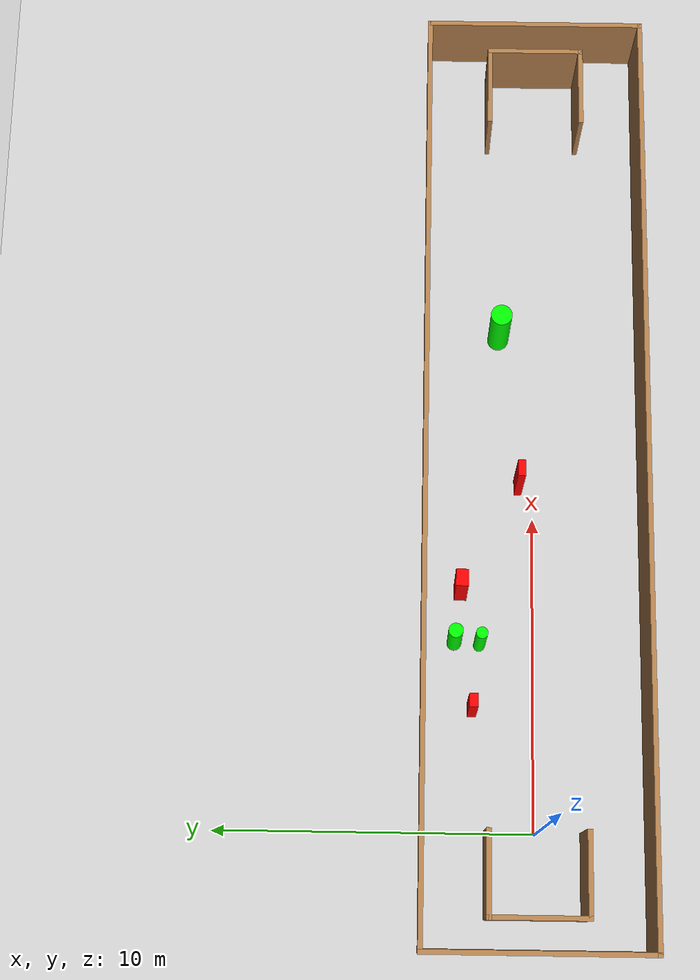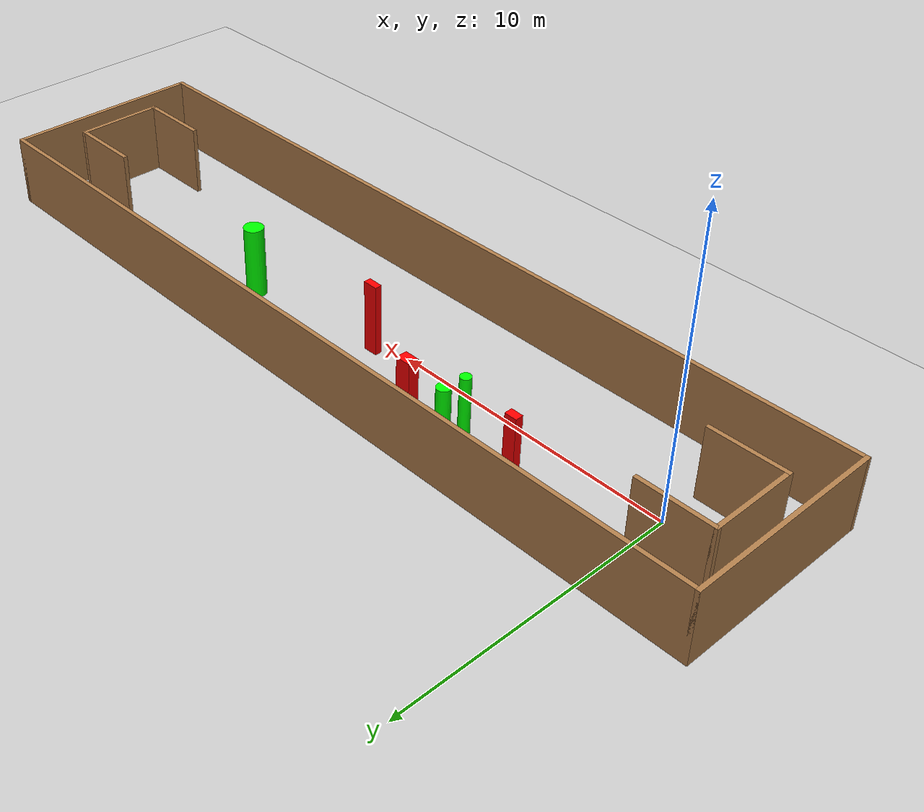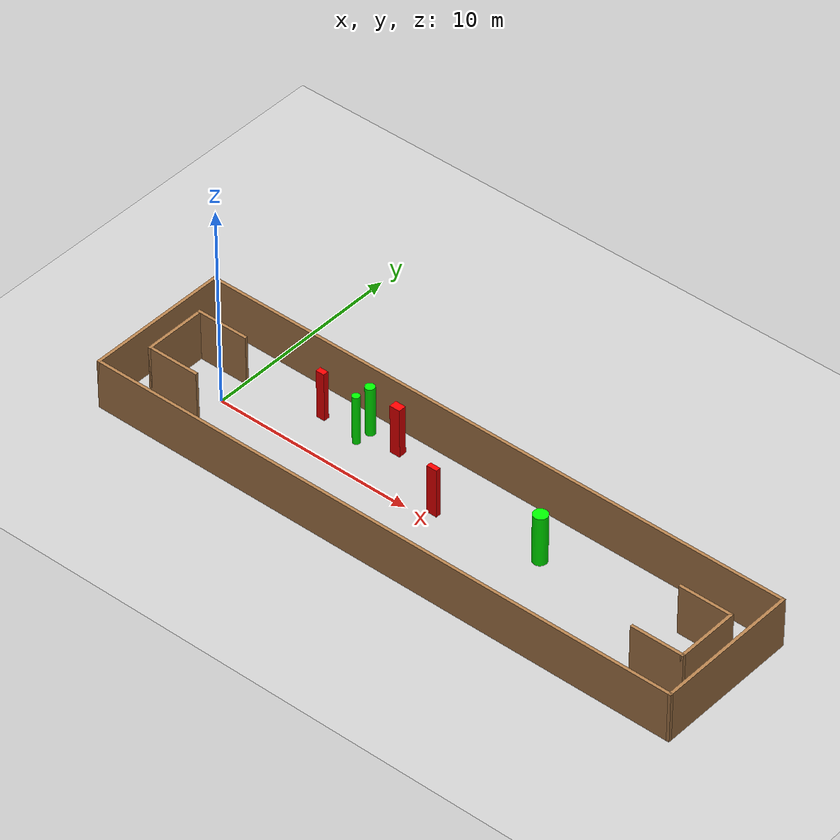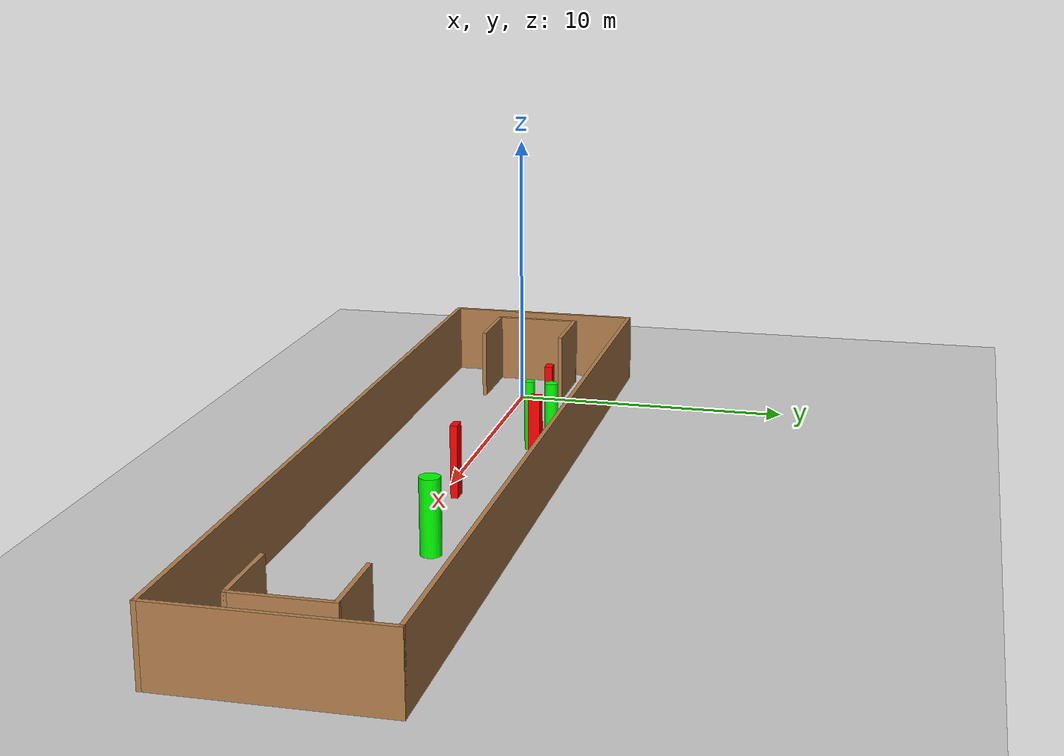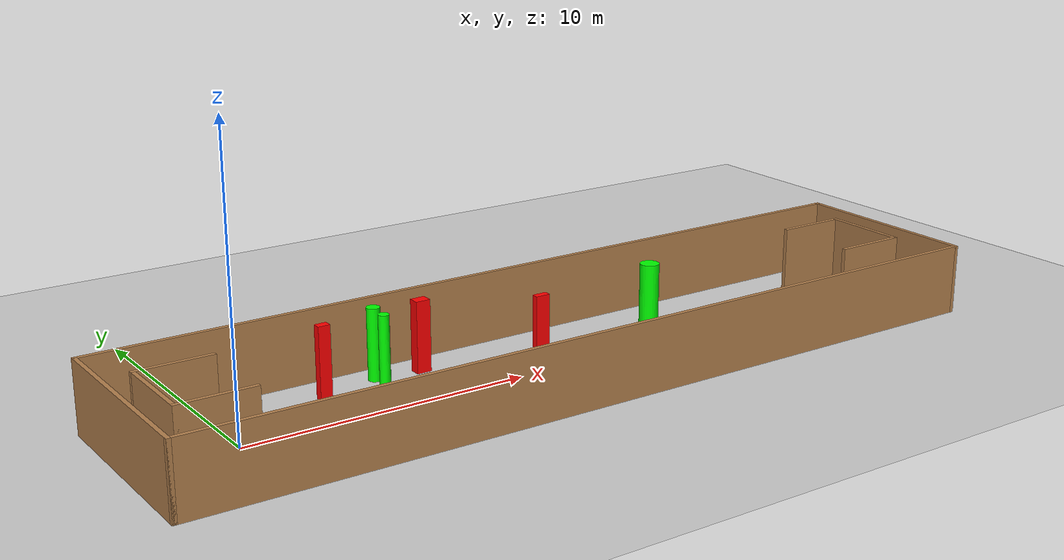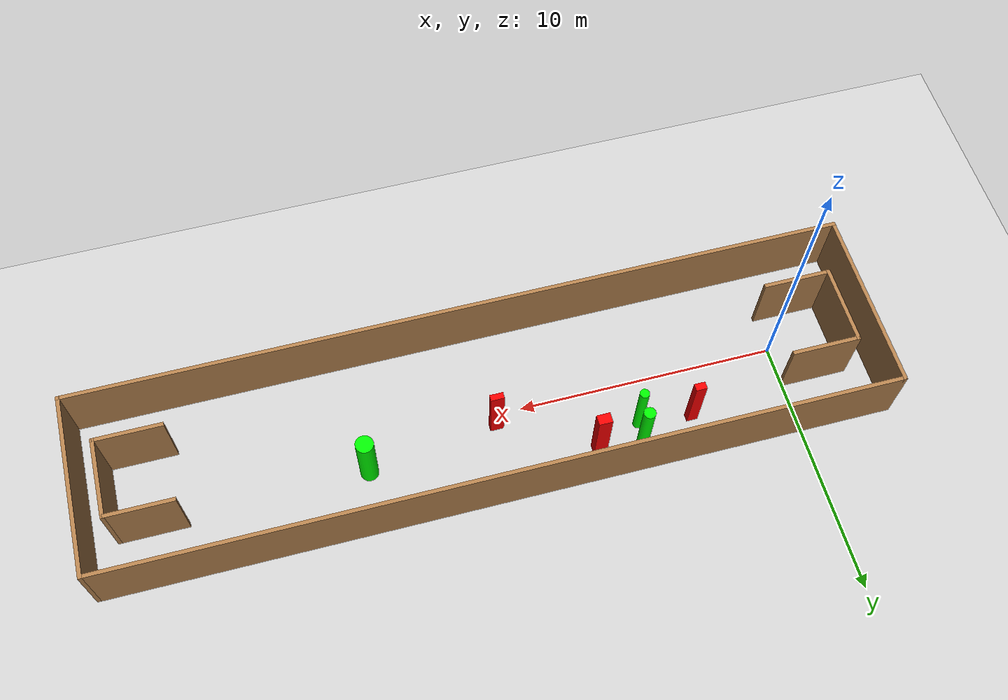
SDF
<sdf version="1.7">
 <world name="default">
  <light name="sun" type="directional">
   <pose>0 0 10 0 -0 0</pose>
   <diffuse>0.8 0.8 0.8 1</diffuse>
   <specular>0.2 0.2 0.2 1</specular>
   <attenuation>
    <range>1000</range>
    <constant>0.9</constant>
    <linear>0.01</linear>
    <quadratic>0.001</quadratic>
   </attenuation>
   <direction>-0.5 0.1 -0.9</direction>
   <spot><inner_angle>0</inner_angle><outer_angle>0</outer_angle><falloff>0</falloff></spot>
  </light>
  <model name="ground_plane">
   <static>1</static>
   <link name="link">
    <collision name="collision">
     <geometry><plane><normal>0 0 1</normal><size>100 100</size></plane></geometry>
     <surface>
      <contact><collide_bitmask>65535</collide_bitmask></contact>
      <friction><ode><mu>100</mu><mu2>50</mu2></ode></friction>
     </surface>
    </collision>
    <visual name="visual">
     <cast_shadows>0</cast_shadows>
     <geometry><plane><normal>0 0 1</normal><size>100 100</size></plane></geometry>
     <material>
      <script><uri>file://media/materials/scripts/gazebo.material</uri><name>Gazebo/Grey</name></script>
     </material>
    </visual>
   </link>
  </model>
  <gravity>0 0 -9.8</gravity>
  <magnetic_field>6e-06 2.3e-05 -4.2e-05</magnetic_field>
  <atmosphere type="adiabatic"/>
  <physics type="ode">
   <max_step_size>0.001</max_step_size>
   <real_time_factor>1</real_time_factor>
   <real_time_update_rate>1000</real_time_update_rate>
  </physics>
  <scene><ambient>0.4 0.4 0.4 1</ambient><background>0.7 0.7 0.7 1</background><shadows>1</shadows></scene>
  <spherical_coordinates>
   <surface_model>EARTH_WGS84</surface_model>
   <latitude_deg>0</latitude_deg>
   <longitude_deg>0</longitude_deg>
   <elevation>0</elevation>
   <heading_deg>0</heading_deg>
  </spherical_coordinates>
  <model name="my_base_walls">
   <link name="Wall_0">
    <collision name="Wall_0_Collision">
     <geometry><box><size>7.15 0.15 2.5</size></box></geometry>
     <pose>0 0 1.25 0 -0 0</pose>
    </collision>
    <visual name="Wall_0_Visual">
     <pose>0 0 1.25 0 -0 0</pose>
     <geometry><box><size>7.15 0.15 2.5</size></box></geometry>
     <material>
      <script><uri>file://media/materials/scripts/gazebo.material</uri><name>Gazebo/Wood</name></script>
      <ambient>1 1 1 1</ambient>
     </material>
     <meta><layer>0</layer></meta>
    </visual>
    <pose>-15 0 0 0 -0 1.5708</pose>
   </link>
   <link name="Wall_10">
    <collision name="Wall_10_Collision">
     <geometry><box><size>2.65 0.15 2.5</size></box></geometry>
     <pose>0 0 1.25 0 -0 0</pose>
    </collision>
    <visual name="Wall_10_Visual">
     <pose>0 0 1.25 0 -0 0</pose>
     <geometry><box><size>2.65 0.15 2.5</size></box></geometry>
     <material>
      <script><uri>file://media/materials/scripts/gazebo.material</uri><name>Gazebo/Wood</name></script>
      <ambient>1 1 1 1</ambient>
     </material>
     <meta><layer>0</layer></meta>
    </visual>
    <pose>-12.75 -1.5 0 0 -0 0</pose>
   </link>
   <link name="Wall_12">
    <collision name="Wall_12_Collision">
     <geometry><box><size>2.65 0.15 2.5</size></box></geometry>
     <pose>0 0 1.25 0 -0 0</pose>
    </collision>
    <visual name="Wall_12_Visual">
     <pose>0 0 1.25 0 -0 0</pose>
     <geometry><box><size>2.65 0.15 2.5</size></box></geometry>
     <material>
      <script><uri>file://media/materials/scripts/gazebo.material</uri><name>Gazebo/Wood</name></script>
      <ambient>1 1 1 1</ambient>
     </material>
     <meta><layer>0</layer></meta>
    </visual>
    <pose>-12.75 1.5 0 0 -0 0</pose>
   </link>
   <link name="Wall_14">
    <collision name="Wall_14_Collision">
     <geometry><box><size>3.15 0.15 2.5</size></box></geometry>
     <pose>0 0 1.25 0 -0 0</pose>
    </collision>
    <visual name="Wall_14_Visual">
     <pose>0 0 1.25 0 -0 0</pose>
     <geometry><box><size>3.15 0.15 2.5</size></box></geometry>
     <material>
      <script><uri>file://media/materials/scripts/gazebo.material</uri><name>Gazebo/Wood</name></script>
      <ambient>1 1 1 1</ambient>
     </material>
     <meta><layer>0</layer></meta>
    </visual>
    <pose>14 0 0 0 -0 -1.5708</pose>
   </link>
   <link name="Wall_15">
    <collision name="Wall_15_Collision">
     <geometry><box><size>2.65 0.15 2.5</size></box></geometry>
     <pose>0 0 1.25 0 -0 0</pose>
    </collision>
    <visual name="Wall_15_Visual">
     <pose>0 0 1.25 0 -0 0</pose>
     <geometry><box><size>2.65 0.15 2.5</size></box></geometry>
     <material>
      <script><uri>file://media/materials/scripts/gazebo.material</uri><name>Gazebo/Wood</name></script>
      <ambient>1 1 1 1</ambient>
     </material>
     <meta><layer>0</layer></meta>
    </visual>
    <pose>12.75 -1.5 0 0 -0 3.14159</pose>
   </link>
   <link name="Wall_17">
    <collision name="Wall_17_Collision">
     <geometry><box><size>2.65 0.15 2.5</size></box></geometry>
     <pose>0 0 1.25 0 -0 0</pose>
    </collision>
    <visual name="Wall_17_Visual">
     <pose>0 0 1.25 0 -0 0</pose>
     <geometry><box><size>2.65 0.15 2.5</size></box></geometry>
     <material>
      <script><uri>file://media/materials/scripts/gazebo.material</uri><name>Gazebo/Wood</name></script>
      <ambient>1 1 1 1</ambient>
     </material>
     <meta><layer>0</layer></meta>
    </visual>
    <pose>12.75 1.5 0 0 -0 3.14159</pose>
   </link>
   <link name="Wall_2">
    <collision name="Wall_2_Collision">
     <geometry><box><size>30.15 0.15 2.5</size></box></geometry>
     <pose>0 0 1.25 0 -0 0</pose>
    </collision>
    <visual name="Wall_2_Visual">
     <pose>0 0 1.25 0 -0 0</pose>
     <geometry><box><size>30.15 0.15 2.5</size></box></geometry>
     <material>
      <script><uri>file://media/materials/scripts/gazebo.material</uri><name>Gazebo/Wood</name></script>
      <ambient>1 1 1 1</ambient>
     </material>
     <meta><layer>0</layer></meta>
    </visual>
    <pose>-0 -3.5 0 0 -0 0</pose>
   </link>
   <link name="Wall_4">
    <collision name="Wall_4_Collision">
     <geometry><box><size>30.15 0.15 2.5</size></box></geometry>
     <pose>0 0 1.25 0 -0 0</pose>
    </collision>
    <visual name="Wall_4_Visual">
     <pose>0 0 1.25 0 -0 0</pose>
     <geometry><box><size>30.15 0.15 2.5</size></box></geometry>
     <material>
      <script><uri>file://media/materials/scripts/gazebo.material</uri><name>Gazebo/Wood</name></script>
      <ambient>1 1 1 1</ambient>
     </material>
     <meta><layer>0</layer></meta>
    </visual>
    <pose>-0 3.5 0 0 -0 0</pose>
   </link>
   <link name="Wall_6">
    <collision name="Wall_6_Collision">
     <geometry><box><size>7.15 0.15 2.5</size></box></geometry>
     <pose>0 0 1.25 0 -0 0</pose>
    </collision>
    <visual name="Wall_6_Visual">
     <pose>0 0 1.25 0 -0 0</pose>
     <geometry><box><size>7.15 0.15 2.5</size></box></geometry>
     <material>
      <script><uri>file://media/materials/scripts/gazebo.material</uri><name>Gazebo/Wood</name></script>
      <ambient>1 1 1 1</ambient>
     </material>
     <meta><layer>0</layer></meta>
    </visual>
    <pose>15 0 0 0 -0 -1.5708</pose>
   </link>
   <link name="Wall_9">
    <collision name="Wall_9_Collision">
     <geometry><box><size>3.15 0.15 2.5</size></box></geometry>
     <pose>0 0 1.25 0 -0 0</pose>
    </collision>
    <visual name="Wall_9_Visual">
     <pose>0 0 1.25 0 -0 0</pose>
     <geometry><box><size>3.15 0.15 2.5</size></box></geometry>
     <material>
      <script><uri>file://media/materials/scripts/gazebo.material</uri><name>Gazebo/Wood</name></script>
      <ambient>1 1 1 1</ambient>
     </material>
     <meta><layer>0</layer></meta>
    </visual>
    <pose>-14 0 0 0 -0 -1.5708</pose>
   </link>
   <static>1</static>
   <pose>11.5 0 0 0 -0 0</pose>
  </model>
  <model name="cylinder1">
   <static>1</static>
   <link name="link">
    <inertial>
     <mass>1</mass>
     <inertia><ixx>0.5</ixx><ixy>0</ixy><ixz>0</ixz><iyy>0.5</iyy><iyz>0</iyz><izz>1</izz></inertia>
    </inertial>
    <collision name="collision">
     <geometry><cylinder><radius>0.34206209231440804</radius><length>2.5</length></cylinder></geometry>
    </collision>
    <visual name="visual">
     <geometry><cylinder><radius>0.34206209231440804</radius><length>2.5</length></cylinder></geometry>
     <material>
      <ambient>0 1 0 1</ambient>
      <diffuse>0 1 0 1</diffuse>
      <specular>0.1 0.1 0.1 1</specular>
      <emissive>0 0 0 0</emissive>
     </material>
    </visual>
   </link>
   <pose>16.150907155734167 1.1179308549162998 1.25 0 0 0</pose>
  </model>
  <model name="cylinder2">
   <static>1</static>
   <link name="link">
    <inertial>
     <mass>1</mass>
     <inertia><ixx>0.5</ixx><ixy>0</ixy><ixz>0</ixz><iyy>0.5</iyy><iyz>0</iyz><izz>1</izz></inertia>
    </inertial>
    <collision name="collision">
     <geometry><cylinder><radius>0.18454402051451232</radius><length>2.5</length></cylinder></geometry>
    </collision>
    <visual name="visual">
     <geometry><cylinder><radius>0.18454402051451232</radius><length>2.5</length></cylinder></geometry>
     <material>
      <ambient>0 1 0 1</ambient>
      <diffuse>0 1 0 1</diffuse>
      <specular>0.1 0.1 0.1 1</specular>
      <emissive>0 0 0 0</emissive>
     </material>
    </visual>
   </link>
   <pose>5.882320887933078 1.713327176756179 1.25 0 0 0</pose>
  </model>
  <model name="cylinder3">
   <static>1</static>
   <link name="link">
    <inertial>
     <mass>1</mass>
     <inertia><ixx>0.5</ixx><ixy>0</ixy><ixz>0</ixz><iyy>0.5</iyy><iyz>0</iyz><izz>1</izz></inertia>
    </inertial>
    <collision name="collision">
     <geometry><cylinder><radius>0.22898004152299878</radius><length>2.5</length></cylinder></geometry>
    </collision>
    <visual name="visual">
     <geometry><cylinder><radius>0.22898004152299878</radius><length>2.5</length></cylinder></geometry>
     <material>
      <ambient>0 1 0 1</ambient>
      <diffuse>0 1 0 1</diffuse>
      <specular>0.1 0.1 0.1 1</specular>
      <emissive>0 0 0 0</emissive>
     </material>
    </visual>
   </link>
   <pose>5.948053017108686 2.5109038659202563 1.25 0 0 0</pose>
  </model>
  <model name="box1">
   <static>1</static>
   <link name="link">
    <inertial>
     <mass>1</mass>
     <inertia><ixx>0.083</ixx><ixy>0</ixy><ixz>0</ixz><iyy>0.083</iyy><iyz>0</iyz><izz>0.083</izz></inertia>
    </inertial>
    <collision name="collision">
     <geometry><box><size>0.5140428501914993 0.24361978533140394 2.5</size></box></geometry>
    </collision>
    <visual name="visual">
     <geometry><box><size>0.5140428501914993 0.24361978533140394 2.5</size></box></geometry>
     <material>
      <ambient>1 0 0 1</ambient>
      <diffuse>1 0 0 1</diffuse>
      <specular>0.1 0.1 0.1 1</specular>
      <emissive>0 0 0 0</emissive>
     </material>
    </visual>
    <sensor name="my_contact" type="contact">
     <contact><collision>box_collision</collision><topic>__default_topic__</topic></contact>
    </sensor>
   </link>
   <pose>11.099824791096962 0.4798585658898449 1.25 0 0 0</pose>
  </model>
  <model name="box2">
   <static>1</static>
   <link name="link">
    <inertial>
     <mass>1</mass>
     <inertia><ixx>0.083</ixx><ixy>0</ixy><ixz>0</ixz><iyy>0.083</iyy><iyz>0</iyz><izz>0.083</izz></inertia>
    </inertial>
    <collision name="collision">
     <geometry><box><size>0.42084812289631013 0.27743527450051014 2.5</size></box></geometry>
    </collision>
    <visual name="visual">
     <geometry><box><size>0.42084812289631013 0.27743527450051014 2.5</size></box></geometry>
     <material>
      <ambient>1 0 0 1</ambient>
      <diffuse>1 0 0 1</diffuse>
      <specular>0.1 0.1 0.1 1</specular>
      <emissive>0 0 0 0</emissive>
     </material>
    </visual>
    <sensor name="my_contact" type="contact">
     <contact><collision>box_collision</collision><topic>__default_topic__</topic></contact>
    </sensor>
   </link>
   <pose>3.831187068098947 1.95378253584607 1.25 0 0 0</pose>
  </model>
  <model name="box3">
   <static>1</static>
   <link name="link">
    <inertial>
     <mass>1</mass>
     <inertia><ixx>0.083</ixx><ixy>0</ixy><ixz>0</ixz><iyy>0.083</iyy><iyz>0</iyz><izz>0.083</izz></inertia>
    </inertial>
    <collision name="collision">
     <geometry><box><size>0.5202501441583418 0.38993189537960016 2.5</size></box></geometry>
    </collision>
    <visual name="visual">
     <geometry><box><size>0.5202501441583418 0.38993189537960016 2.5</size></box></geometry>
     <material>
      <ambient>1 0 0 1</ambient>
      <diffuse>1 0 0 1</diffuse>
      <specular>0.1 0.1 0.1 1</specular>
      <emissive>0 0 0 0</emissive>
     </material>
    </visual>
    <sensor name="my_contact" type="contact">
     <contact><collision>box_collision</collision><topic>__default_topic__</topic></contact>
    </sensor>
   </link>
   <pose>7.59265305449885 2.325466364154888 1.25 0 0 0</pose>
  </model>
 </world>
</sdf>
